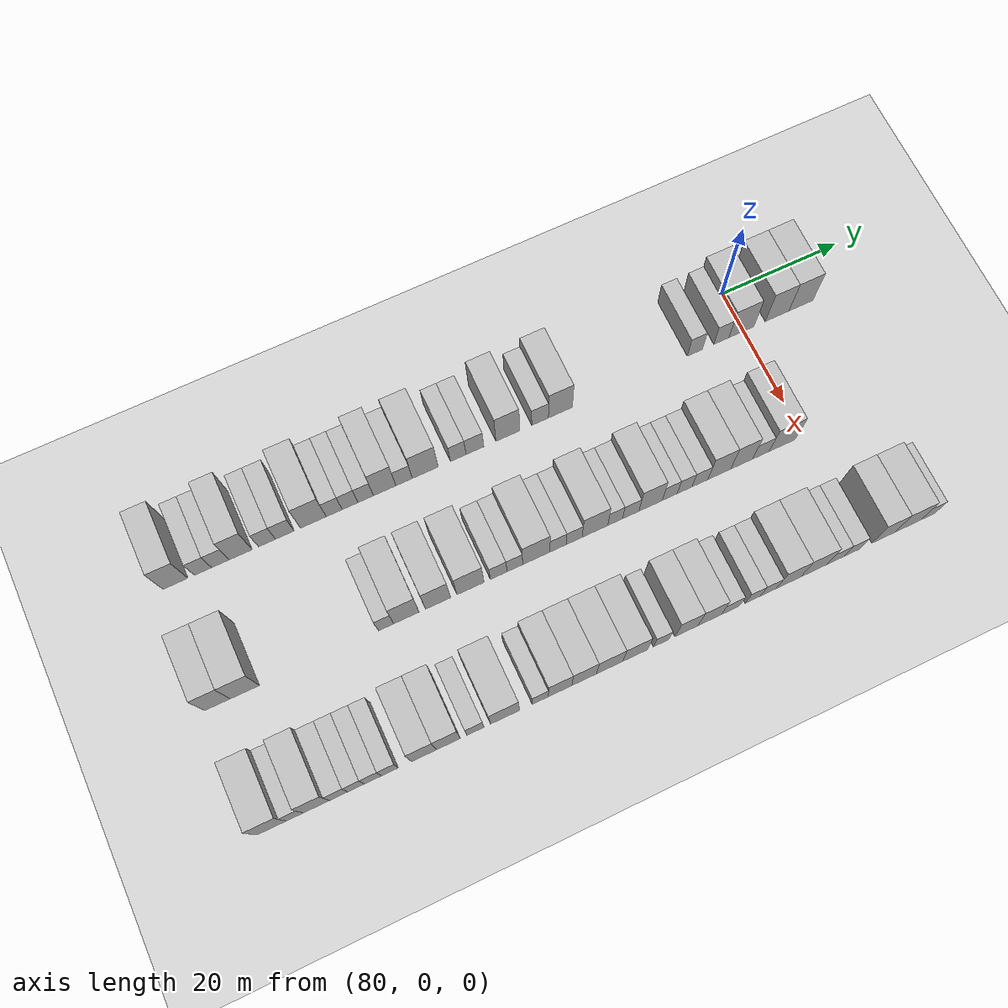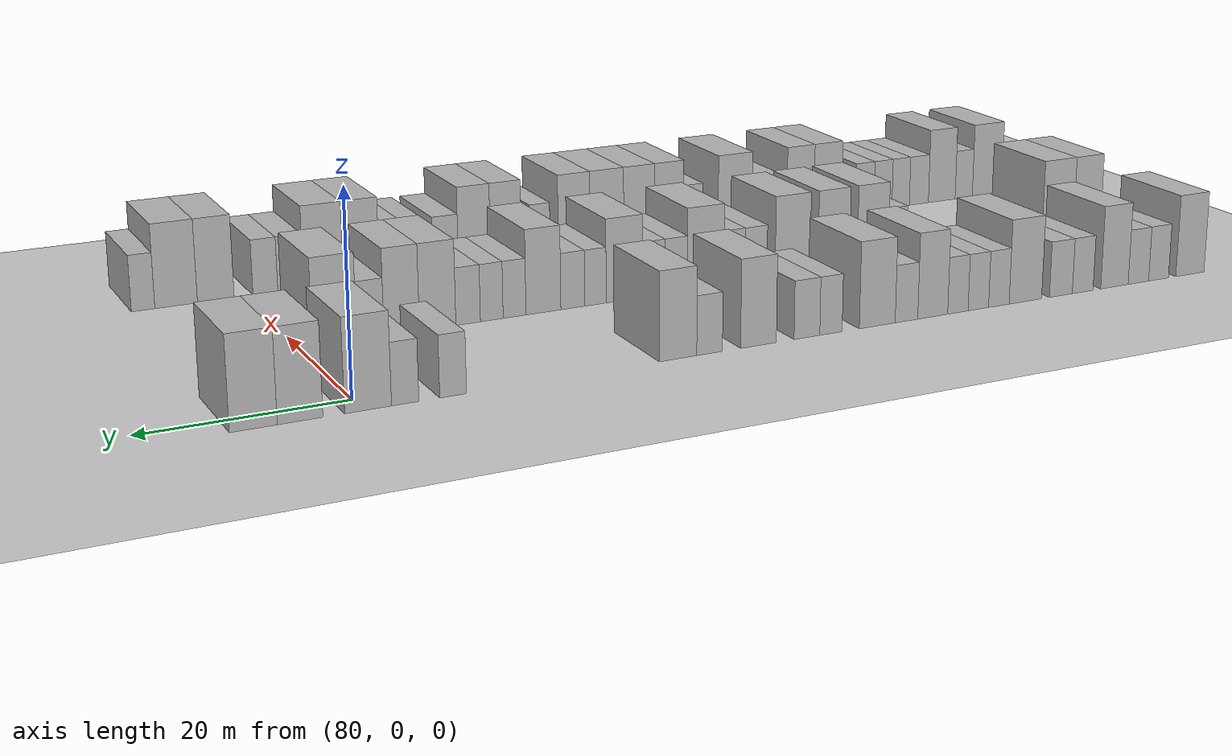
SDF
<sdf version="1.6">
 <world name="default">
  <include>
   <name>ground_plane_2</name>
   <uri>model://HANNAS_ground_plane</uri>
   <pose>100 0 0  0 0 0</pose>
  </include>
  <model name="building_584">
   <static>1</static>
   <pose>82.0000 -93.4964 0 0.000000 0.000000 0.000000</pose>
   <link name="link">
    <pose>0 0 4.50 0 0 0</pose>
    <collision name="collision"><geometry><box><size>10.0000 3.8624 9.0000</size></box></geometry></collision>
    <visual name="visual">
     <cast_shadows>0</cast_shadows>
     <geometry><box><size>10.0000 3.8624 9.0000</size></box></geometry>
     <material>
      <script>
       <uri>model://HANNAS_wall/materials/scripts</uri>
       <uri>model://HANNAS_wall/materials/textures</uri>
       <name>vrc/HANNAS_wall</name>
      </script>
     </material>
    </visual>
   </link>
  </model>
  <model name="building_585">
   <static>1</static>
   <pose>82.0000 -89.2235 0 0.000000 0.000000 0.000000</pose>
   <link name="link">
    <pose>0 0 3.00 0 0 0</pose>
    <collision name="collision"><geometry><box><size>10.0000 2.6835 6.0000</size></box></geometry></collision>
    <visual name="visual">
     <cast_shadows>0</cast_shadows>
     <geometry><box><size>10.0000 2.6835 6.0000</size></box></geometry>
     <material>
      <script>
       <uri>model://HANNAS_wall/materials/scripts</uri>
       <uri>model://HANNAS_wall/materials/textures</uri>
       <name>vrc/HANNAS_wall</name>
      </script>
     </material>
    </visual>
   </link>
  </model>
  <model name="building_586">
   <static>1</static>
   <pose>82.0000 -86.5142 0 0.000000 0.000000 0.000000</pose>
   <link name="link">
    <pose>0 0 3.00 0 0 0</pose>
    <collision name="collision"><geometry><box><size>10.0000 2.7349 6.0000</size></box></geometry></collision>
    <visual name="visual">
     <cast_shadows>0</cast_shadows>
     <geometry><box><size>10.0000 2.7349 6.0000</size></box></geometry>
     <material>
      <script>
       <uri>model://HANNAS_wall/materials/scripts</uri>
       <uri>model://HANNAS_wall/materials/textures</uri>
       <name>vrc/HANNAS_wall</name>
      </script>
     </material>
    </visual>
   </link>
  </model>
  <model name="building_587">
   <static>1</static>
   <pose>82.0000 -83.3303 0 0.000000 0.000000 0.000000</pose>
   <link name="link">
    <pose>0 0 4.50 0 0 0</pose>
    <collision name="collision"><geometry><box><size>10.0000 3.6330 9.0000</size></box></geometry></collision>
    <visual name="visual">
     <cast_shadows>0</cast_shadows>
     <geometry><box><size>10.0000 3.6330 9.0000</size></box></geometry>
     <material>
      <script>
       <uri>model://HANNAS_wall/materials/scripts</uri>
       <uri>model://HANNAS_wall/materials/textures</uri>
       <name>vrc/HANNAS_wall</name>
      </script>
     </material>
    </visual>
   </link>
  </model>
  <model name="building_588">
   <static>1</static>
   <pose>82.0000 -79.1652 0 0.000000 0.000000 0.000000</pose>
   <link name="link">
    <pose>0 0 3.00 0 0 0</pose>
    <collision name="collision"><geometry><box><size>10.0000 2.6972 6.0000</size></box></geometry></collision>
    <visual name="visual">
     <cast_shadows>0</cast_shadows>
     <geometry><box><size>10.0000 2.6972 6.0000</size></box></geometry>
     <material>
      <script>
       <uri>model://HANNAS_wall/materials/scripts</uri>
       <uri>model://HANNAS_wall/materials/textures</uri>
       <name>vrc/HANNAS_wall</name>
      </script>
     </material>
    </visual>
   </link>
  </model>
  <model name="building_589">
   <static>1</static>
   <pose>82.0000 -76.3458 0 0.000000 0.000000 0.000000</pose>
   <link name="link">
    <pose>0 0 3.00 0 0 0</pose>
    <collision name="collision"><geometry><box><size>10.0000 2.9415 6.0000</size></box></geometry></collision>
    <visual name="visual">
     <cast_shadows>0</cast_shadows>
     <geometry><box><size>10.0000 2.9415 6.0000</size></box></geometry>
     <material>
      <script>
       <uri>model://HANNAS_wall/materials/scripts</uri>
       <uri>model://HANNAS_wall/materials/textures</uri>
       <name>vrc/HANNAS_wall</name>
      </script>
     </material>
    </visual>
   </link>
  </model>
  <model name="building_590">
   <static>1</static>
   <pose>82.0000 -71.8231 0 0.000000 0.000000 0.000000</pose>
   <link name="link">
    <pose>0 0 4.50 0 0 0</pose>
    <collision name="collision"><geometry><box><size>10.0000 4.1041 9.0000</size></box></geometry></collision>
    <visual name="visual">
     <cast_shadows>0</cast_shadows>
     <geometry><box><size>10.0000 4.1041 9.0000</size></box></geometry>
     <material>
      <script>
       <uri>model://HANNAS_wall/materials/scripts</uri>
       <uri>model://HANNAS_wall/materials/textures</uri>
       <name>vrc/HANNAS_wall</name>
      </script>
     </material>
    </visual>
   </link>
  </model>
  <model name="building_591">
   <static>1</static>
   <pose>82.0000 -68.4899 0 0.000000 0.000000 0.000000</pose>
   <link name="link">
    <pose>0 0 3.00 0 0 0</pose>
    <collision name="collision"><geometry><box><size>10.0000 2.5623 6.0000</size></box></geometry></collision>
    <visual name="visual">
     <cast_shadows>0</cast_shadows>
     <geometry><box><size>10.0000 2.5623 6.0000</size></box></geometry>
     <material>
      <script>
       <uri>model://HANNAS_wall/materials/scripts</uri>
       <uri>model://HANNAS_wall/materials/textures</uri>
       <name>vrc/HANNAS_wall</name>
      </script>
     </material>
    </visual>
   </link>
  </model>
  <model name="building_592">
   <static>1</static>
   <pose>82.0000 -65.9437 0 0.000000 0.000000 0.000000</pose>
   <link name="link">
    <pose>0 0 3.00 0 0 0</pose>
    <collision name="collision"><geometry><box><size>10.0000 2.5301 6.0000</size></box></geometry></collision>
    <visual name="visual">
     <cast_shadows>0</cast_shadows>
     <geometry><box><size>10.0000 2.5301 6.0000</size></box></geometry>
     <material>
      <script>
       <uri>model://HANNAS_wall/materials/scripts</uri>
       <uri>model://HANNAS_wall/materials/textures</uri>
       <name>vrc/HANNAS_wall</name>
      </script>
     </material>
    </visual>
   </link>
  </model>
  <model name="building_593">
   <static>1</static>
   <pose>82.0000 -63.4325 0 0.000000 0.000000 0.000000</pose>
   <link name="link">
    <pose>0 0 3.00 0 0 0</pose>
    <collision name="collision"><geometry><box><size>10.0000 2.4923 6.0000</size></box></geometry></collision>
    <visual name="visual">
     <cast_shadows>0</cast_shadows>
     <geometry><box><size>10.0000 2.4923 6.0000</size></box></geometry>
     <material>
      <script>
       <uri>model://HANNAS_wall/materials/scripts</uri>
       <uri>model://HANNAS_wall/materials/textures</uri>
       <name>vrc/HANNAS_wall</name>
      </script>
     </material>
    </visual>
   </link>
  </model>
  <model name="building_594">
   <static>1</static>
   <pose>82.0000 -60.3789 0 0.000000 0.000000 0.000000</pose>
   <link name="link">
    <pose>0 0 4.50 0 0 0</pose>
    <collision name="collision"><geometry><box><size>10.0000 3.6150 9.0000</size></box></geometry></collision>
    <visual name="visual">
     <cast_shadows>0</cast_shadows>
     <geometry><box><size>10.0000 3.6150 9.0000</size></box></geometry>
     <material>
      <script>
       <uri>model://HANNAS_wall/materials/scripts</uri>
       <uri>model://HANNAS_wall/materials/textures</uri>
       <name>vrc/HANNAS_wall</name>
      </script>
     </material>
    </visual>
   </link>
  </model>
  <model name="building_595">
   <static>1</static>
   <pose>82.0000 -57.2275 0 0.000000 0.000000 0.000000</pose>
   <link name="link">
    <pose>0 0 3.00 0 0 0</pose>
    <collision name="collision"><geometry><box><size>10.0000 2.6879 6.0000</size></box></geometry></collision>
    <visual name="visual">
     <cast_shadows>0</cast_shadows>
     <geometry><box><size>10.0000 2.6879 6.0000</size></box></geometry>
     <material>
      <script>
       <uri>model://HANNAS_wall/materials/scripts</uri>
       <uri>model://HANNAS_wall/materials/textures</uri>
       <name>vrc/HANNAS_wall</name>
      </script>
     </material>
    </visual>
   </link>
  </model>
  <model name="building_596">
   <static>1</static>
   <pose>82.0000 -53.7746 0 0.000000 0.000000 0.000000</pose>
   <link name="link">
    <pose>0 0 4.50 0 0 0</pose>
    <collision name="collision"><geometry><box><size>10.0000 4.2178 9.0000</size></box></geometry></collision>
    <visual name="visual">
     <cast_shadows>0</cast_shadows>
     <geometry><box><size>10.0000 4.2178 9.0000</size></box></geometry>
     <material>
      <script>
       <uri>model://HANNAS_wall/materials/scripts</uri>
       <uri>model://HANNAS_wall/materials/textures</uri>
       <name>vrc/HANNAS_wall</name>
      </script>
     </material>
    </visual>
   </link>
  </model>
  <model name="building_597">
   <static>1</static>
   <pose>82.0000 -48.3834 0 0.000000 0.000000 0.000000</pose>
   <link name="link">
    <pose>0 0 3.00 0 0 0</pose>
    <collision name="collision"><geometry><box><size>10.0000 2.5645 6.0000</size></box></geometry></collision>
    <visual name="visual">
     <cast_shadows>0</cast_shadows>
     <geometry><box><size>10.0000 2.5645 6.0000</size></box></geometry>
     <material>
      <script>
       <uri>model://HANNAS_wall/materials/scripts</uri>
       <uri>model://HANNAS_wall/materials/textures</uri>
       <name>vrc/HANNAS_wall</name>
      </script>
     </material>
    </visual>
   </link>
  </model>
  <model name="building_598">
   <static>1</static>
   <pose>82.0000 -45.6412 0 0.000000 0.000000 0.000000</pose>
   <link name="link">
    <pose>0 0 3.00 0 0 0</pose>
    <collision name="collision"><geometry><box><size>10.0000 2.9199 6.0000</size></box></geometry></collision>
    <visual name="visual">
     <cast_shadows>0</cast_shadows>
     <geometry><box><size>10.0000 2.9199 6.0000</size></box></geometry>
     <material>
      <script>
       <uri>model://HANNAS_wall/materials/scripts</uri>
       <uri>model://HANNAS_wall/materials/textures</uri>
       <name>vrc/HANNAS_wall</name>
      </script>
     </material>
    </visual>
   </link>
  </model>
  <model name="building_599">
   <static>1</static>
   <pose>82.0000 -40.2009 0 0.000000 0.000000 0.000000</pose>
   <link name="link">
    <pose>0 0 4.50 0 0 0</pose>
    <collision name="collision"><geometry><box><size>10.0000 3.9608 9.0000</size></box></geometry></collision>
    <visual name="visual">
     <cast_shadows>0</cast_shadows>
     <geometry><box><size>10.0000 3.9608 9.0000</size></box></geometry>
     <material>
      <script>
       <uri>model://HANNAS_wall/materials/scripts</uri>
       <uri>model://HANNAS_wall/materials/textures</uri>
       <name>vrc/HANNAS_wall</name>
      </script>
     </material>
    </visual>
   </link>
  </model>
  <model name="building_600">
   <static>1</static>
   <pose>82.0000 -34.8259 0 0.000000 0.000000 0.000000</pose>
   <link name="link">
    <pose>0 0 3.00 0 0 0</pose>
    <collision name="collision"><geometry><box><size>10.0000 2.7892 6.0000</size></box></geometry></collision>
    <visual name="visual">
     <cast_shadows>0</cast_shadows>
     <geometry><box><size>10.0000 2.7892 6.0000</size></box></geometry>
     <material>
      <script>
       <uri>model://HANNAS_wall/materials/scripts</uri>
       <uri>model://HANNAS_wall/materials/textures</uri>
       <name>vrc/HANNAS_wall</name>
      </script>
     </material>
    </visual>
   </link>
  </model>
  <model name="building_601">
   <static>1</static>
   <pose>82.0000 -31.4218 0 0.000000 0.000000 0.000000</pose>
   <link name="link">
    <pose>0 0 4.50 0 0 0</pose>
    <collision name="collision"><geometry><box><size>10.0000 4.0190 9.0000</size></box></geometry></collision>
    <visual name="visual">
     <cast_shadows>0</cast_shadows>
     <geometry><box><size>10.0000 4.0190 9.0000</size></box></geometry>
     <material>
      <script>
       <uri>model://HANNAS_wall/materials/scripts</uri>
       <uri>model://HANNAS_wall/materials/textures</uri>
       <name>vrc/HANNAS_wall</name>
      </script>
     </material>
    </visual>
   </link>
  </model>
  <model name="building_602">
   <static>1</static>
   <pose>82.0000 -8.5173 0 0.000000 0.000000 0.000000</pose>
   <link name="link">
    <pose>0 0 3.00 0 0 0</pose>
    <collision name="collision"><geometry><box><size>10.0000 2.5966 6.0000</size></box></geometry></collision>
    <visual name="visual">
     <cast_shadows>0</cast_shadows>
     <geometry><box><size>10.0000 2.5966 6.0000</size></box></geometry>
     <material>
      <script>
       <uri>model://HANNAS_wall/materials/scripts</uri>
       <uri>model://HANNAS_wall/materials/textures</uri>
       <name>vrc/HANNAS_wall</name>
      </script>
     </material>
    </visual>
   </link>
  </model>
  <model name="building_603">
   <static>1</static>
   <pose>82.0000 -3.9219 0 0.000000 0.000000 0.000000</pose>
   <link name="link">
    <pose>0 0 3.00 0 0 0</pose>
    <collision name="collision"><geometry><box><size>10.0000 2.5942 6.0000</size></box></geometry></collision>
    <visual name="visual">
     <cast_shadows>0</cast_shadows>
     <geometry><box><size>10.0000 2.5942 6.0000</size></box></geometry>
     <material>
      <script>
       <uri>model://HANNAS_wall/materials/scripts</uri>
       <uri>model://HANNAS_wall/materials/textures</uri>
       <name>vrc/HANNAS_wall</name>
      </script>
     </material>
    </visual>
   </link>
  </model>
  <model name="building_604">
   <static>1</static>
   <pose>82.0000 -0.4354 0 0.000000 0.000000 0.000000</pose>
   <link name="link">
    <pose>0 0 4.50 0 0 0</pose>
    <collision name="collision"><geometry><box><size>10.0000 4.3788 9.0000</size></box></geometry></collision>
    <visual name="visual">
     <cast_shadows>0</cast_shadows>
     <geometry><box><size>10.0000 4.3788 9.0000</size></box></geometry>
     <material>
      <script>
       <uri>model://HANNAS_wall/materials/scripts</uri>
       <uri>model://HANNAS_wall/materials/textures</uri>
       <name>vrc/HANNAS_wall</name>
      </script>
     </material>
    </visual>
   </link>
  </model>
  <model name="building_605">
   <static>1</static>
   <pose>82.0000 5.8231 0 0.000000 0.000000 0.000000</pose>
   <link name="link">
    <pose>0 0 4.50 0 0 0</pose>
    <collision name="collision"><geometry><box><size>10.0000 4.1381 9.0000</size></box></geometry></collision>
    <visual name="visual">
     <cast_shadows>0</cast_shadows>
     <geometry><box><size>10.0000 4.1381 9.0000</size></box></geometry>
     <material>
      <script>
       <uri>model://HANNAS_wall/materials/scripts</uri>
       <uri>model://HANNAS_wall/materials/textures</uri>
       <name>vrc/HANNAS_wall</name>
      </script>
     </material>
    </visual>
   </link>
  </model>
  <model name="building_606">
   <static>1</static>
   <pose>82.0000 10.0282 0 0.000000 0.000000 0.000000</pose>
   <link name="link">
    <pose>0 0 4.50 0 0 0</pose>
    <collision name="collision"><geometry><box><size>10.0000 4.2722 9.0000</size></box></geometry></collision>
    <visual name="visual">
     <cast_shadows>0</cast_shadows>
     <geometry><box><size>10.0000 4.2722 9.0000</size></box></geometry>
     <material>
      <script>
       <uri>model://HANNAS_wall/materials/scripts</uri>
       <uri>model://HANNAS_wall/materials/textures</uri>
       <name>vrc/HANNAS_wall</name>
      </script>
     </material>
    </visual>
   </link>
  </model>
  <model name="building_761">
   <static>1</static>
   <pose>101.0000 -94.2984 0 0.000000 0.000000 0.000000</pose>
   <link name="link">
    <pose>0 0 4.50 0 0 0</pose>
    <collision name="collision"><geometry><box><size>10.0000 3.8793 9.0000</size></box></geometry></collision>
    <visual name="visual">
     <cast_shadows>0</cast_shadows>
     <geometry><box><size>10.0000 3.8793 9.0000</size></box></geometry>
     <material>
      <script>
       <uri>model://HANNAS_wall/materials/scripts</uri>
       <uri>model://HANNAS_wall/materials/textures</uri>
       <name>vrc/HANNAS_wall</name>
      </script>
     </material>
    </visual>
   </link>
  </model>
  <model name="building_762">
   <static>1</static>
   <pose>101.0000 -90.1488 0 0.000000 0.000000 0.000000</pose>
   <link name="link">
    <pose>0 0 4.50 0 0 0</pose>
    <collision name="collision"><geometry><box><size>10.0000 4.4200 9.0000</size></box></geometry></collision>
    <visual name="visual">
     <cast_shadows>0</cast_shadows>
     <geometry><box><size>10.0000 4.4200 9.0000</size></box></geometry>
     <material>
      <script>
       <uri>model://HANNAS_wall/materials/scripts</uri>
       <uri>model://HANNAS_wall/materials/textures</uri>
       <name>vrc/HANNAS_wall</name>
      </script>
     </material>
    </visual>
   </link>
  </model>
  <model name="building_763">
   <static>1</static>
   <pose>101.0000 -68.3354 0 0.000000 0.000000 0.000000</pose>
   <link name="link">
    <pose>0 0 3.00 0 0 0</pose>
    <collision name="collision"><geometry><box><size>10.0000 2.4023 6.0000</size></box></geometry></collision>
    <visual name="visual">
     <cast_shadows>0</cast_shadows>
     <geometry><box><size>10.0000 2.4023 6.0000</size></box></geometry>
     <material>
      <script>
       <uri>model://HANNAS_wall/materials/scripts</uri>
       <uri>model://HANNAS_wall/materials/textures</uri>
       <name>vrc/HANNAS_wall</name>
      </script>
     </material>
    </visual>
   </link>
  </model>
  <model name="building_764">
   <static>1</static>
   <pose>101.0000 -65.1371 0 0.000000 0.000000 0.000000</pose>
   <link name="link">
    <pose>0 0 4.50 0 0 0</pose>
    <collision name="collision"><geometry><box><size>10.0000 3.9944 9.0000</size></box></geometry></collision>
    <visual name="visual">
     <cast_shadows>0</cast_shadows>
     <geometry><box><size>10.0000 3.9944 9.0000</size></box></geometry>
     <material>
      <script>
       <uri>model://HANNAS_wall/materials/scripts</uri>
       <uri>model://HANNAS_wall/materials/textures</uri>
       <name>vrc/HANNAS_wall</name>
      </script>
     </material>
    </visual>
   </link>
  </model>
  <model name="building_765">
   <static>1</static>
   <pose>101.0000 -60.1486 0 0.000000 0.000000 0.000000</pose>
   <link name="link">
    <pose>0 0 4.50 0 0 0</pose>
    <collision name="collision"><geometry><box><size>10.0000 3.9825 9.0000</size></box></geometry></collision>
    <visual name="visual">
     <cast_shadows>0</cast_shadows>
     <geometry><box><size>10.0000 3.9825 9.0000</size></box></geometry>
     <material>
      <script>
       <uri>model://HANNAS_wall/materials/scripts</uri>
       <uri>model://HANNAS_wall/materials/textures</uri>
       <name>vrc/HANNAS_wall</name>
      </script>
     </material>
    </visual>
   </link>
  </model>
  <model name="building_766">
   <static>1</static>
   <pose>101.0000 -54.9922 0 0.000000 0.000000 0.000000</pose>
   <link name="link">
    <pose>0 0 4.50 0 0 0</pose>
    <collision name="collision"><geometry><box><size>10.0000 4.3304 9.0000</size></box></geometry></collision>
    <visual name="visual">
     <cast_shadows>0</cast_shadows>
     <geometry><box><size>10.0000 4.3304 9.0000</size></box></geometry>
     <material>
      <script>
       <uri>model://HANNAS_wall/materials/scripts</uri>
       <uri>model://HANNAS_wall/materials/textures</uri>
       <name>vrc/HANNAS_wall</name>
      </script>
     </material>
    </visual>
   </link>
  </model>
  <model name="building_767">
   <static>1</static>
   <pose>101.0000 -50.4891 0 0.000000 0.000000 0.000000</pose>
   <link name="link">
    <pose>0 0 3.00 0 0 0</pose>
    <collision name="collision"><geometry><box><size>10.0000 2.6758 6.0000</size></box></geometry></collision>
    <visual name="visual">
     <cast_shadows>0</cast_shadows>
     <geometry><box><size>10.0000 2.6758 6.0000</size></box></geometry>
     <material>
      <script>
       <uri>model://HANNAS_wall/materials/scripts</uri>
       <uri>model://HANNAS_wall/materials/textures</uri>
       <name>vrc/HANNAS_wall</name>
      </script>
     </material>
    </visual>
   </link>
  </model>
  <model name="building_768">
   <static>1</static>
   <pose>101.0000 -47.8897 0 0.000000 0.000000 0.000000</pose>
   <link name="link">
    <pose>0 0 3.00 0 0 0</pose>
    <collision name="collision"><geometry><box><size>10.0000 2.5231 6.0000</size></box></geometry></collision>
    <visual name="visual">
     <cast_shadows>0</cast_shadows>
     <geometry><box><size>10.0000 2.5231 6.0000</size></box></geometry>
     <material>
      <script>
       <uri>model://HANNAS_wall/materials/scripts</uri>
       <uri>model://HANNAS_wall/materials/textures</uri>
       <name>vrc/HANNAS_wall</name>
      </script>
     </material>
    </visual>
   </link>
  </model>
  <model name="building_769">
   <static>1</static>
   <pose>101.0000 -44.4375 0 0.000000 0.000000 0.000000</pose>
   <link name="link">
    <pose>0 0 4.50 0 0 0</pose>
    <collision name="collision"><geometry><box><size>10.0000 4.3813 9.0000</size></box></geometry></collision>
    <visual name="visual">
     <cast_shadows>0</cast_shadows>
     <geometry><box><size>10.0000 4.3813 9.0000</size></box></geometry>
     <material>
      <script>
       <uri>model://HANNAS_wall/materials/scripts</uri>
       <uri>model://HANNAS_wall/materials/textures</uri>
       <name>vrc/HANNAS_wall</name>
      </script>
     </material>
    </visual>
   </link>
  </model>
  <model name="building_770">
   <static>1</static>
   <pose>101.0000 -40.9219 0 0.000000 0.000000 0.000000</pose>
   <link name="link">
    <pose>0 0 3.00 0 0 0</pose>
    <collision name="collision"><geometry><box><size>10.0000 2.6497 6.0000</size></box></geometry></collision>
    <visual name="visual">
     <cast_shadows>0</cast_shadows>
     <geometry><box><size>10.0000 2.6497 6.0000</size></box></geometry>
     <material>
      <script>
       <uri>model://HANNAS_wall/materials/scripts</uri>
       <uri>model://HANNAS_wall/materials/textures</uri>
       <name>vrc/HANNAS_wall</name>
      </script>
     </material>
    </visual>
   </link>
  </model>
  <model name="building_771">
   <static>1</static>
   <pose>101.0000 -38.3006 0 0.000000 0.000000 0.000000</pose>
   <link name="link">
    <pose>0 0 3.00 0 0 0</pose>
    <collision name="collision"><geometry><box><size>10.0000 2.5930 6.0000</size></box></geometry></collision>
    <visual name="visual">
     <cast_shadows>0</cast_shadows>
     <geometry><box><size>10.0000 2.5930 6.0000</size></box></geometry>
     <material>
      <script>
       <uri>model://HANNAS_wall/materials/scripts</uri>
       <uri>model://HANNAS_wall/materials/textures</uri>
       <name>vrc/HANNAS_wall</name>
      </script>
     </material>
    </visual>
   </link>
  </model>
  <model name="building_772">
   <static>1</static>
   <pose>101.0000 -34.8980 0 0.000000 0.000000 0.000000</pose>
   <link name="link">
    <pose>0 0 4.50 0 0 0</pose>
    <collision name="collision"><geometry><box><size>10.0000 4.2121 9.0000</size></box></geometry></collision>
    <visual name="visual">
     <cast_shadows>0</cast_shadows>
     <geometry><box><size>10.0000 4.2121 9.0000</size></box></geometry>
     <material>
      <script>
       <uri>model://HANNAS_wall/materials/scripts</uri>
       <uri>model://HANNAS_wall/materials/textures</uri>
       <name>vrc/HANNAS_wall</name>
      </script>
     </material>
    </visual>
   </link>
  </model>
  <model name="building_773">
   <static>1</static>
   <pose>101.0000 -31.5750 0 0.000000 0.000000 0.000000</pose>
   <link name="link">
    <pose>0 0 3.00 0 0 0</pose>
    <collision name="collision"><geometry><box><size>10.0000 2.4340 6.0000</size></box></geometry></collision>
    <visual name="visual">
     <cast_shadows>0</cast_shadows>
     <geometry><box><size>10.0000 2.4340 6.0000</size></box></geometry>
     <material>
      <script>
       <uri>model://HANNAS_wall/materials/scripts</uri>
       <uri>model://HANNAS_wall/materials/textures</uri>
       <name>vrc/HANNAS_wall</name>
      </script>
     </material>
    </visual>
   </link>
  </model>
  <model name="building_774">
   <static>1</static>
   <pose>101.0000 -29.0079 0 0.000000 0.000000 0.000000</pose>
   <link name="link">
    <pose>0 0 3.00 0 0 0</pose>
    <collision name="collision"><geometry><box><size>10.0000 2.7002 6.0000</size></box></geometry></collision>
    <visual name="visual">
     <cast_shadows>0</cast_shadows>
     <geometry><box><size>10.0000 2.7002 6.0000</size></box></geometry>
     <material>
      <script>
       <uri>model://HANNAS_wall/materials/scripts</uri>
       <uri>model://HANNAS_wall/materials/textures</uri>
       <name>vrc/HANNAS_wall</name>
      </script>
     </material>
    </visual>
   </link>
  </model>
  <model name="building_775">
   <static>1</static>
   <pose>101.0000 -25.7231 0 0.000000 0.000000 0.000000</pose>
   <link name="link">
    <pose>0 0 4.50 0 0 0</pose>
    <collision name="collision"><geometry><box><size>10.0000 3.8694 9.0000</size></box></geometry></collision>
    <visual name="visual">
     <cast_shadows>0</cast_shadows>
     <geometry><box><size>10.0000 3.8694 9.0000</size></box></geometry>
     <material>
      <script>
       <uri>model://HANNAS_wall/materials/scripts</uri>
       <uri>model://HANNAS_wall/materials/textures</uri>
       <name>vrc/HANNAS_wall</name>
      </script>
     </material>
    </visual>
   </link>
  </model>
  <model name="building_776">
   <static>1</static>
   <pose>101.0000 -22.5357 0 0.000000 0.000000 0.000000</pose>
   <link name="link">
    <pose>0 0 3.00 0 0 0</pose>
    <collision name="collision"><geometry><box><size>10.0000 2.5053 6.0000</size></box></geometry></collision>
    <visual name="visual">
     <cast_shadows>0</cast_shadows>
     <geometry><box><size>10.0000 2.5053 6.0000</size></box></geometry>
     <material>
      <script>
       <uri>model://HANNAS_wall/materials/scripts</uri>
       <uri>model://HANNAS_wall/materials/textures</uri>
       <name>vrc/HANNAS_wall</name>
      </script>
     </material>
    </visual>
   </link>
  </model>
  <model name="building_777">
   <static>1</static>
   <pose>101.0000 -20.0496 0 0.000000 0.000000 0.000000</pose>
   <link name="link">
    <pose>0 0 3.00 0 0 0</pose>
    <collision name="collision"><geometry><box><size>10.0000 2.4669 6.0000</size></box></geometry></collision>
    <visual name="visual">
     <cast_shadows>0</cast_shadows>
     <geometry><box><size>10.0000 2.4669 6.0000</size></box></geometry>
     <material>
      <script>
       <uri>model://HANNAS_wall/materials/scripts</uri>
       <uri>model://HANNAS_wall/materials/textures</uri>
       <name>vrc/HANNAS_wall</name>
      </script>
     </material>
    </visual>
   </link>
  </model>
  <model name="building_778">
   <static>1</static>
   <pose>101.0000 -17.4974 0 0.000000 0.000000 0.000000</pose>
   <link name="link">
    <pose>0 0 3.00 0 0 0</pose>
    <collision name="collision"><geometry><box><size>10.0000 2.6374 6.0000</size></box></geometry></collision>
    <visual name="visual">
     <cast_shadows>0</cast_shadows>
     <geometry><box><size>10.0000 2.6374 6.0000</size></box></geometry>
     <material>
      <script>
       <uri>model://HANNAS_wall/materials/scripts</uri>
       <uri>model://HANNAS_wall/materials/textures</uri>
       <name>vrc/HANNAS_wall</name>
      </script>
     </material>
    </visual>
   </link>
  </model>
  <model name="building_779">
   <static>1</static>
   <pose>101.0000 -14.2562 0 0.000000 0.000000 0.000000</pose>
   <link name="link">
    <pose>0 0 4.50 0 0 0</pose>
    <collision name="collision"><geometry><box><size>10.0000 3.8450 9.0000</size></box></geometry></collision>
    <visual name="visual">
     <cast_shadows>0</cast_shadows>
     <geometry><box><size>10.0000 3.8450 9.0000</size></box></geometry>
     <material>
      <script>
       <uri>model://HANNAS_wall/materials/scripts</uri>
       <uri>model://HANNAS_wall/materials/textures</uri>
       <name>vrc/HANNAS_wall</name>
      </script>
     </material>
    </visual>
   </link>
  </model>
  <model name="building_780">
   <static>1</static>
   <pose>101.0000 -10.4831 0 0.000000 0.000000 0.000000</pose>
   <link name="link">
    <pose>0 0 4.50 0 0 0</pose>
    <collision name="collision"><geometry><box><size>10.0000 3.7013 9.0000</size></box></geometry></collision>
    <visual name="visual">
     <cast_shadows>0</cast_shadows>
     <geometry><box><size>10.0000 3.7013 9.0000</size></box></geometry>
     <material>
      <script>
       <uri>model://HANNAS_wall/materials/scripts</uri>
       <uri>model://HANNAS_wall/materials/textures</uri>
       <name>vrc/HANNAS_wall</name>
      </script>
     </material>
    </visual>
   </link>
  </model>
  <model name="building_781">
   <static>1</static>
   <pose>101.0000 -7.2250 0 0.000000 0.000000 0.000000</pose>
   <link name="link">
    <pose>0 0 3.00 0 0 0</pose>
    <collision name="collision"><geometry><box><size>10.0000 2.8148 6.0000</size></box></geometry></collision>
    <visual name="visual">
     <cast_shadows>0</cast_shadows>
     <geometry><box><size>10.0000 2.8148 6.0000</size></box></geometry>
     <material>
      <script>
       <uri>model://HANNAS_wall/materials/scripts</uri>
       <uri>model://HANNAS_wall/materials/textures</uri>
       <name>vrc/HANNAS_wall</name>
      </script>
     </material>
    </visual>
   </link>
  </model>
  <model name="building_782">
   <static>1</static>
   <pose>101.0000 -3.5739 0 0.000000 0.000000 0.000000</pose>
   <link name="link">
    <pose>0 0 4.50 0 0 0</pose>
    <collision name="collision"><geometry><box><size>10.0000 4.4874 9.0000</size></box></geometry></collision>
    <visual name="visual">
     <cast_shadows>0</cast_shadows>
     <geometry><box><size>10.0000 4.4874 9.0000</size></box></geometry>
     <material>
      <script>
       <uri>model://HANNAS_wall/materials/scripts</uri>
       <uri>model://HANNAS_wall/materials/textures</uri>
       <name>vrc/HANNAS_wall</name>
      </script>
     </material>
    </visual>
   </link>
  </model>
  <model name="building_928">
   <static>1</static>
   <pose>120.0000 -93.6471 0 0.000000 0.000000 0.000000</pose>
   <link name="link">
    <pose>0 0 4.50 0 0 0</pose>
    <collision name="collision"><geometry><box><size>10.0000 4.3684 9.0000</size></box></geometry></collision>
    <visual name="visual">
     <cast_shadows>0</cast_shadows>
     <geometry><box><size>10.0000 4.3684 9.0000</size></box></geometry>
     <material>
      <script>
       <uri>model://HANNAS_wall/materials/scripts</uri>
       <uri>model://HANNAS_wall/materials/textures</uri>
       <name>vrc/HANNAS_wall</name>
      </script>
     </material>
    </visual>
   </link>
  </model>
  <model name="building_929">
   <static>1</static>
   <pose>120.0000 -90.1959 0 0.000000 0.000000 0.000000</pose>
   <link name="link">
    <pose>0 0 3.00 0 0 0</pose>
    <collision name="collision"><geometry><box><size>10.0000 2.5342 6.0000</size></box></geometry></collision>
    <visual name="visual">
     <cast_shadows>0</cast_shadows>
     <geometry><box><size>10.0000 2.5342 6.0000</size></box></geometry>
     <material>
      <script>
       <uri>model://HANNAS_wall/materials/scripts</uri>
       <uri>model://HANNAS_wall/materials/textures</uri>
       <name>vrc/HANNAS_wall</name>
      </script>
     </material>
    </visual>
   </link>
  </model>
  <model name="building_930">
   <static>1</static>
   <pose>120.0000 -86.9793 0 0.000000 0.000000 0.000000</pose>
   <link name="link">
    <pose>0 0 4.50 0 0 0</pose>
    <collision name="collision"><geometry><box><size>10.0000 3.8990 9.0000</size></box></geometry></collision>
    <visual name="visual">
     <cast_shadows>0</cast_shadows>
     <geometry><box><size>10.0000 3.8990 9.0000</size></box></geometry>
     <material>
      <script>
       <uri>model://HANNAS_wall/materials/scripts</uri>
       <uri>model://HANNAS_wall/materials/textures</uri>
       <name>vrc/HANNAS_wall</name>
      </script>
     </material>
    </visual>
   </link>
  </model>
  <model name="building_931">
   <static>1</static>
   <pose>120.0000 -83.6548 0 0.000000 0.000000 0.000000</pose>
   <link name="link">
    <pose>0 0 3.00 0 0 0</pose>
    <collision name="collision"><geometry><box><size>10.0000 2.7500 6.0000</size></box></geometry></collision>
    <visual name="visual">
     <cast_shadows>0</cast_shadows>
     <geometry><box><size>10.0000 2.7500 6.0000</size></box></geometry>
     <material>
      <script>
       <uri>model://HANNAS_wall/materials/scripts</uri>
       <uri>model://HANNAS_wall/materials/textures</uri>
       <name>vrc/HANNAS_wall</name>
      </script>
     </material>
    </visual>
   </link>
  </model>
  <model name="building_932">
   <static>1</static>
   <pose>120.0000 -81.0326 0 0.000000 0.000000 0.000000</pose>
   <link name="link">
    <pose>0 0 3.00 0 0 0</pose>
    <collision name="collision"><geometry><box><size>10.0000 2.4945 6.0000</size></box></geometry></collision>
    <visual name="visual">
     <cast_shadows>0</cast_shadows>
     <geometry><box><size>10.0000 2.4945 6.0000</size></box></geometry>
     <material>
      <script>
       <uri>model://HANNAS_wall/materials/scripts</uri>
       <uri>model://HANNAS_wall/materials/textures</uri>
       <name>vrc/HANNAS_wall</name>
      </script>
     </material>
    </visual>
   </link>
  </model>
  <model name="building_933">
   <static>1</static>
   <pose>120.0000 -78.5040 0 0.000000 0.000000 0.000000</pose>
   <link name="link">
    <pose>0 0 3.00 0 0 0</pose>
    <collision name="collision"><geometry><box><size>10.0000 2.5626 6.0000</size></box></geometry></collision>
    <visual name="visual">
     <cast_shadows>0</cast_shadows>
     <geometry><box><size>10.0000 2.5626 6.0000</size></box></geometry>
     <material>
      <script>
       <uri>model://HANNAS_wall/materials/scripts</uri>
       <uri>model://HANNAS_wall/materials/textures</uri>
       <name>vrc/HANNAS_wall</name>
      </script>
     </material>
    </visual>
   </link>
  </model>
  <model name="building_934">
   <static>1</static>
   <pose>120.0000 -75.9491 0 0.000000 0.000000 0.000000</pose>
   <link name="link">
    <pose>0 0 3.00 0 0 0</pose>
    <collision name="collision"><geometry><box><size>10.0000 2.5472 6.0000</size></box></geometry></collision>
    <visual name="visual">
     <cast_shadows>0</cast_shadows>
     <geometry><box><size>10.0000 2.5472 6.0000</size></box></geometry>
     <material>
      <script>
       <uri>model://HANNAS_wall/materials/scripts</uri>
       <uri>model://HANNAS_wall/materials/textures</uri>
       <name>vrc/HANNAS_wall</name>
      </script>
     </material>
    </visual>
   </link>
  </model>
  <model name="building_935">
   <static>1</static>
   <pose>120.0000 -70.7709 0 0.000000 0.000000 0.000000</pose>
   <link name="link">
    <pose>0 0 4.50 0 0 0</pose>
    <collision name="collision"><geometry><box><size>10.0000 3.8092 9.0000</size></box></geometry></collision>
    <visual name="visual">
     <cast_shadows>0</cast_shadows>
     <geometry><box><size>10.0000 3.8092 9.0000</size></box></geometry>
     <material>
      <script>
       <uri>model://HANNAS_wall/materials/scripts</uri>
       <uri>model://HANNAS_wall/materials/textures</uri>
       <name>vrc/HANNAS_wall</name>
      </script>
     </material>
    </visual>
   </link>
  </model>
  <model name="building_936">
   <static>1</static>
   <pose>120.0000 -67.0226 0 0.000000 0.000000 0.000000</pose>
   <link name="link">
    <pose>0 0 4.50 0 0 0</pose>
    <collision name="collision"><geometry><box><size>10.0000 3.6875 9.0000</size></box></geometry></collision>
    <visual name="visual">
     <cast_shadows>0</cast_shadows>
     <geometry><box><size>10.0000 3.6875 9.0000</size></box></geometry>
     <material>
      <script>
       <uri>model://HANNAS_wall/materials/scripts</uri>
       <uri>model://HANNAS_wall/materials/textures</uri>
       <name>vrc/HANNAS_wall</name>
      </script>
     </material>
    </visual>
   </link>
  </model>
  <model name="building_937">
   <static>1</static>
   <pose>120.0000 -62.8539 0 0.000000 0.000000 0.000000</pose>
   <link name="link">
    <pose>0 0 3.00 0 0 0</pose>
    <collision name="collision"><geometry><box><size>10.0000 2.6499 6.0000</size></box></geometry></collision>
    <visual name="visual">
     <cast_shadows>0</cast_shadows>
     <geometry><box><size>10.0000 2.6499 6.0000</size></box></geometry>
     <material>
      <script>
       <uri>model://HANNAS_wall/materials/scripts</uri>
       <uri>model://HANNAS_wall/materials/textures</uri>
       <name>vrc/HANNAS_wall</name>
      </script>
     </material>
    </visual>
   </link>
  </model>
  <model name="building_938">
   <static>1</static>
   <pose>120.0000 -58.2825 0 0.000000 0.000000 0.000000</pose>
   <link name="link">
    <pose>0 0 4.50 0 0 0</pose>
    <collision name="collision"><geometry><box><size>10.0000 4.4929 9.0000</size></box></geometry></collision>
    <visual name="visual">
     <cast_shadows>0</cast_shadows>
     <geometry><box><size>10.0000 4.4929 9.0000</size></box></geometry>
     <material>
      <script>
       <uri>model://HANNAS_wall/materials/scripts</uri>
       <uri>model://HANNAS_wall/materials/textures</uri>
       <name>vrc/HANNAS_wall</name>
      </script>
     </material>
    </visual>
   </link>
  </model>
  <model name="building_939">
   <static>1</static>
   <pose>120.0000 -52.7861 0 0.000000 0.000000 0.000000</pose>
   <link name="link">
    <pose>0 0 3.00 0 0 0</pose>
    <collision name="collision"><geometry><box><size>10.0000 2.5000 6.0000</size></box></geometry></collision>
    <visual name="visual">
     <cast_shadows>0</cast_shadows>
     <geometry><box><size>10.0000 2.5000 6.0000</size></box></geometry>
     <material>
      <script>
       <uri>model://HANNAS_wall/materials/scripts</uri>
       <uri>model://HANNAS_wall/materials/textures</uri>
       <name>vrc/HANNAS_wall</name>
      </script>
     </material>
    </visual>
   </link>
  </model>
  <model name="building_940">
   <static>1</static>
   <pose>120.0000 -49.6807 0 0.000000 0.000000 0.000000</pose>
   <link name="link">
    <pose>0 0 4.50 0 0 0</pose>
    <collision name="collision"><geometry><box><size>10.0000 3.7106 9.0000</size></box></geometry></collision>
    <visual name="visual">
     <cast_shadows>0</cast_shadows>
     <geometry><box><size>10.0000 3.7106 9.0000</size></box></geometry>
     <material>
      <script>
       <uri>model://HANNAS_wall/materials/scripts</uri>
       <uri>model://HANNAS_wall/materials/textures</uri>
       <name>vrc/HANNAS_wall</name>
      </script>
     </material>
    </visual>
   </link>
  </model>
  <model name="building_941">
   <static>1</static>
   <pose>120.0000 -45.8770 0 0.000000 0.000000 0.000000</pose>
   <link name="link">
    <pose>0 0 4.50 0 0 0</pose>
    <collision name="collision"><geometry><box><size>10.0000 3.8968 9.0000</size></box></geometry></collision>
    <visual name="visual">
     <cast_shadows>0</cast_shadows>
     <geometry><box><size>10.0000 3.8968 9.0000</size></box></geometry>
     <material>
      <script>
       <uri>model://HANNAS_wall/materials/scripts</uri>
       <uri>model://HANNAS_wall/materials/textures</uri>
       <name>vrc/HANNAS_wall</name>
      </script>
     </material>
    </visual>
   </link>
  </model>
  <model name="building_942">
   <static>1</static>
   <pose>120.0000 -41.8340 0 0.000000 0.000000 0.000000</pose>
   <link name="link">
    <pose>0 0 4.50 0 0 0</pose>
    <collision name="collision"><geometry><box><size>10.0000 4.1893 9.0000</size></box></geometry></collision>
    <visual name="visual">
     <cast_shadows>0</cast_shadows>
     <geometry><box><size>10.0000 4.1893 9.0000</size></box></geometry>
     <material>
      <script>
       <uri>model://HANNAS_wall/materials/scripts</uri>
       <uri>model://HANNAS_wall/materials/textures</uri>
       <name>vrc/HANNAS_wall</name>
      </script>
     </material>
    </visual>
   </link>
  </model>
  <model name="building_943">
   <static>1</static>
   <pose>120.0000 -37.7803 0 0.000000 0.000000 0.000000</pose>
   <link name="link">
    <pose>0 0 4.50 0 0 0</pose>
    <collision name="collision"><geometry><box><size>10.0000 3.9181 9.0000</size></box></geometry></collision>
    <visual name="visual">
     <cast_shadows>0</cast_shadows>
     <geometry><box><size>10.0000 3.9181 9.0000</size></box></geometry>
     <material>
      <script>
       <uri>model://HANNAS_wall/materials/scripts</uri>
       <uri>model://HANNAS_wall/materials/textures</uri>
       <name>vrc/HANNAS_wall</name>
      </script>
     </material>
    </visual>
   </link>
  </model>
  <model name="building_944">
   <static>1</static>
   <pose>120.0000 -33.5939 0 0.000000 0.000000 0.000000</pose>
   <link name="link">
    <pose>0 0 3.00 0 0 0</pose>
    <collision name="collision"><geometry><box><size>10.0000 2.4546 6.0000</size></box></geometry></collision>
    <visual name="visual">
     <cast_shadows>0</cast_shadows>
     <geometry><box><size>10.0000 2.4546 6.0000</size></box></geometry>
     <material>
      <script>
       <uri>model://HANNAS_wall/materials/scripts</uri>
       <uri>model://HANNAS_wall/materials/textures</uri>
       <name>vrc/HANNAS_wall</name>
      </script>
     </material>
    </visual>
   </link>
  </model>
  <model name="building_945">
   <static>1</static>
   <pose>120.0000 -29.5195 0 0.000000 0.000000 0.000000</pose>
   <link name="link">
    <pose>0 0 4.50 0 0 0</pose>
    <collision name="collision"><geometry><box><size>10.0000 3.6941 9.0000</size></box></geometry></collision>
    <visual name="visual">
     <cast_shadows>0</cast_shadows>
     <geometry><box><size>10.0000 3.6941 9.0000</size></box></geometry>
     <material>
      <script>
       <uri>model://HANNAS_wall/materials/scripts</uri>
       <uri>model://HANNAS_wall/materials/textures</uri>
       <name>vrc/HANNAS_wall</name>
      </script>
     </material>
    </visual>
   </link>
  </model>
  <model name="building_946">
   <static>1</static>
   <pose>120.0000 -25.7779 0 0.000000 0.000000 0.000000</pose>
   <link name="link">
    <pose>0 0 4.50 0 0 0</pose>
    <collision name="collision"><geometry><box><size>10.0000 3.7890 9.0000</size></box></geometry></collision>
    <visual name="visual">
     <cast_shadows>0</cast_shadows>
     <geometry><box><size>10.0000 3.7890 9.0000</size></box></geometry>
     <material>
      <script>
       <uri>model://HANNAS_wall/materials/scripts</uri>
       <uri>model://HANNAS_wall/materials/textures</uri>
       <name>vrc/HANNAS_wall</name>
      </script>
     </material>
    </visual>
   </link>
  </model>
  <model name="building_947">
   <static>1</static>
   <pose>120.0000 -22.4097 0 0.000000 0.000000 0.000000</pose>
   <link name="link">
    <pose>0 0 3.00 0 0 0</pose>
    <collision name="collision"><geometry><box><size>10.0000 2.9474 6.0000</size></box></geometry></collision>
    <visual name="visual">
     <cast_shadows>0</cast_shadows>
     <geometry><box><size>10.0000 2.9474 6.0000</size></box></geometry>
     <material>
      <script>
       <uri>model://HANNAS_wall/materials/scripts</uri>
       <uri>model://HANNAS_wall/materials/textures</uri>
       <name>vrc/HANNAS_wall</name>
      </script>
     </material>
    </visual>
   </link>
  </model>
  <model name="building_948">
   <static>1</static>
   <pose>120.0000 -18.6998 0 0.000000 0.000000 0.000000</pose>
   <link name="link">
    <pose>0 0 3.00 0 0 0</pose>
    <collision name="collision"><geometry><box><size>10.0000 2.4724 6.0000</size></box></geometry></collision>
    <visual name="visual">
     <cast_shadows>0</cast_shadows>
     <geometry><box><size>10.0000 2.4724 6.0000</size></box></geometry>
     <material>
      <script>
       <uri>model://HANNAS_wall/materials/scripts</uri>
       <uri>model://HANNAS_wall/materials/textures</uri>
       <name>vrc/HANNAS_wall</name>
      </script>
     </material>
    </visual>
   </link>
  </model>
  <model name="building_949">
   <static>1</static>
   <pose>120.0000 -16.1464 0 0.000000 0.000000 0.000000</pose>
   <link name="link">
    <pose>0 0 3.00 0 0 0</pose>
    <collision name="collision"><geometry><box><size>10.0000 2.6344 6.0000</size></box></geometry></collision>
    <visual name="visual">
     <cast_shadows>0</cast_shadows>
     <geometry><box><size>10.0000 2.6344 6.0000</size></box></geometry>
     <material>
      <script>
       <uri>model://HANNAS_wall/materials/scripts</uri>
       <uri>model://HANNAS_wall/materials/textures</uri>
       <name>vrc/HANNAS_wall</name>
      </script>
     </material>
    </visual>
   </link>
  </model>
  <model name="building_950">
   <static>1</static>
   <pose>120.0000 -12.8148 0 0.000000 0.000000 0.000000</pose>
   <link name="link">
    <pose>0 0 4.50 0 0 0</pose>
    <collision name="collision"><geometry><box><size>10.0000 4.0287 9.0000</size></box></geometry></collision>
    <visual name="visual">
     <cast_shadows>0</cast_shadows>
     <geometry><box><size>10.0000 4.0287 9.0000</size></box></geometry>
     <material>
      <script>
       <uri>model://HANNAS_wall/materials/scripts</uri>
       <uri>model://HANNAS_wall/materials/textures</uri>
       <name>vrc/HANNAS_wall</name>
      </script>
     </material>
    </visual>
   </link>
  </model>
  <model name="building_951">
   <static>1</static>
   <pose>120.0000 -8.5990 0 0.000000 0.000000 0.000000</pose>
   <link name="link">
    <pose>0 0 4.50 0 0 0</pose>
    <collision name="collision"><geometry><box><size>10.0000 4.4030 9.0000</size></box></geometry></collision>
    <visual name="visual">
     <cast_shadows>0</cast_shadows>
     <geometry><box><size>10.0000 4.4030 9.0000</size></box></geometry>
     <material>
      <script>
       <uri>model://HANNAS_wall/materials/scripts</uri>
       <uri>model://HANNAS_wall/materials/textures</uri>
       <name>vrc/HANNAS_wall</name>
      </script>
     </material>
    </visual>
   </link>
  </model>
  <model name="building_952">
   <static>1</static>
   <pose>120.0000 -4.9908 0 0.000000 0.000000 0.000000</pose>
   <link name="link">
    <pose>0 0 3.00 0 0 0</pose>
    <collision name="collision"><geometry><box><size>10.0000 2.8132 6.0000</size></box></geometry></collision>
    <visual name="visual">
     <cast_shadows>0</cast_shadows>
     <geometry><box><size>10.0000 2.8132 6.0000</size></box></geometry>
     <material>
      <script>
       <uri>model://HANNAS_wall/materials/scripts</uri>
       <uri>model://HANNAS_wall/materials/textures</uri>
       <name>vrc/HANNAS_wall</name>
      </script>
     </material>
    </visual>
   </link>
  </model>
  <model name="building_953">
   <static>1</static>
   <pose>120.0000 -2.2475 0 0.000000 0.000000 0.000000</pose>
   <link name="link">
    <pose>0 0 3.00 0 0 0</pose>
    <collision name="collision"><geometry><box><size>10.0000 2.6734 6.0000</size></box></geometry></collision>
    <visual name="visual">
     <cast_shadows>0</cast_shadows>
     <geometry><box><size>10.0000 2.6734 6.0000</size></box></geometry>
     <material>
      <script>
       <uri>model://HANNAS_wall/materials/scripts</uri>
       <uri>model://HANNAS_wall/materials/textures</uri>
       <name>vrc/HANNAS_wall</name>
      </script>
     </material>
    </visual>
   </link>
  </model>
  <model name="building_954">
   <static>1</static>
   <pose>120.0000 3.0272 0 0.000000 0.000000 0.000000</pose>
   <link name="link">
    <pose>0 0 4.50 0 0 0</pose>
    <collision name="collision"><geometry><box><size>10.0000 3.8760 9.0000</size></box></geometry></collision>
    <visual name="visual">
     <cast_shadows>0</cast_shadows>
     <geometry><box><size>10.0000 3.8760 9.0000</size></box></geometry>
     <material>
      <script>
       <uri>model://HANNAS_wall/materials/scripts</uri>
       <uri>model://HANNAS_wall/materials/textures</uri>
       <name>vrc/HANNAS_wall</name>
      </script>
     </material>
    </visual>
   </link>
  </model>
  <model name="building_955">
   <static>1</static>
   <pose>120.0000 7.1746 0 0.000000 0.000000 0.000000</pose>
   <link name="link">
    <pose>0 0 4.50 0 0 0</pose>
    <collision name="collision"><geometry><box><size>10.0000 4.4187 9.0000</size></box></geometry></collision>
    <visual name="visual">
     <cast_shadows>0</cast_shadows>
     <geometry><box><size>10.0000 4.4187 9.0000</size></box></geometry>
     <material>
      <script>
       <uri>model://HANNAS_wall/materials/scripts</uri>
       <uri>model://HANNAS_wall/materials/textures</uri>
       <name>vrc/HANNAS_wall</name>
      </script>
     </material>
    </visual>
   </link>
  </model>
  <model name="building_956">
   <static>1</static>
   <pose>120.0000 10.5898 0 0.000000 0.000000 0.000000</pose>
   <link name="link">
    <pose>0 0 3.00 0 0 0</pose>
    <collision name="collision"><geometry><box><size>10.0000 2.4118 6.0000</size></box></geometry></collision>
    <visual name="visual">
     <cast_shadows>0</cast_shadows>
     <geometry><box><size>10.0000 2.4118 6.0000</size></box></geometry>
     <material>
      <script>
       <uri>model://HANNAS_wall/materials/scripts</uri>
       <uri>model://HANNAS_wall/materials/textures</uri>
       <name>vrc/HANNAS_wall</name>
      </script>
     </material>
    </visual>
   </link>
  </model>
 </world>
</sdf>
